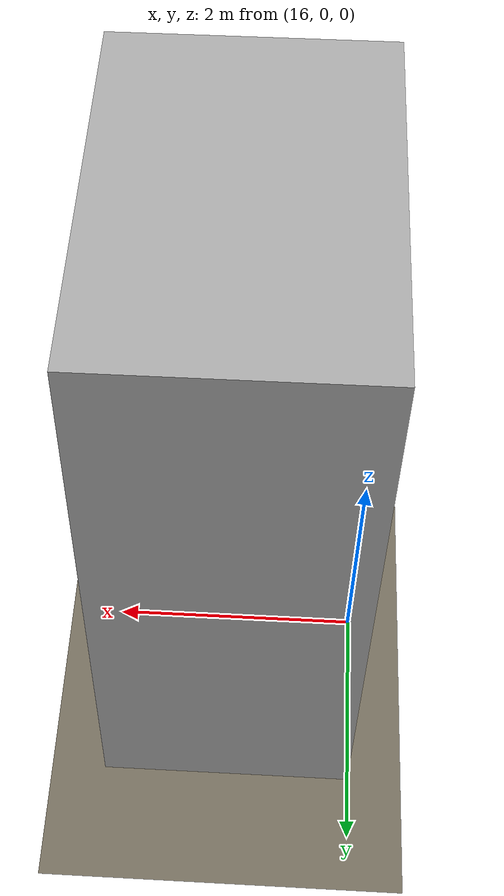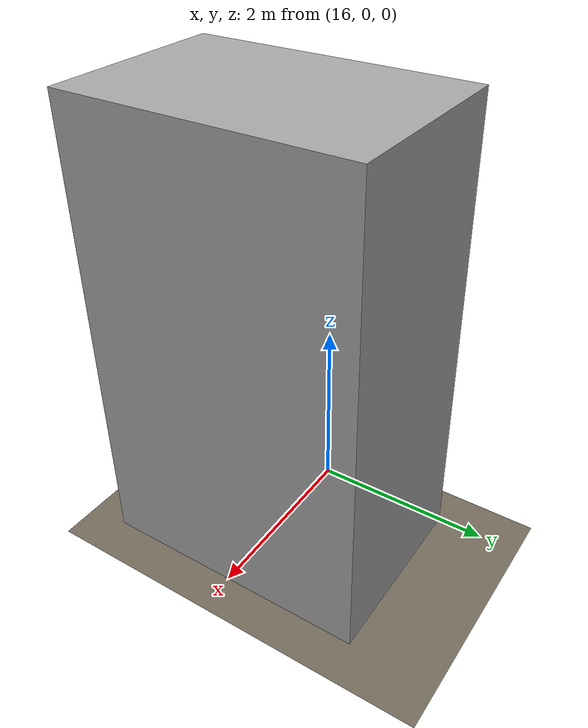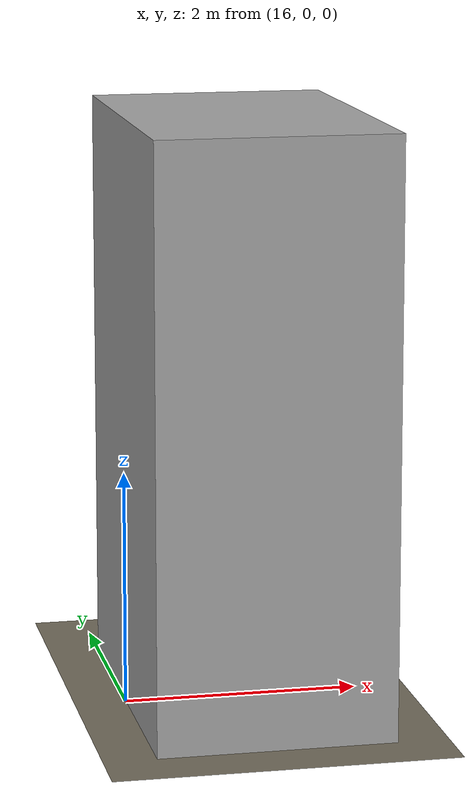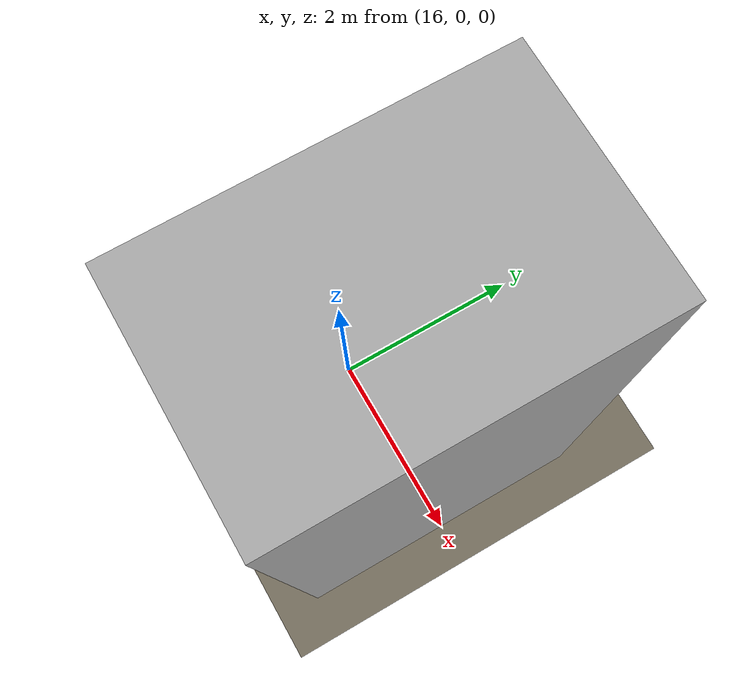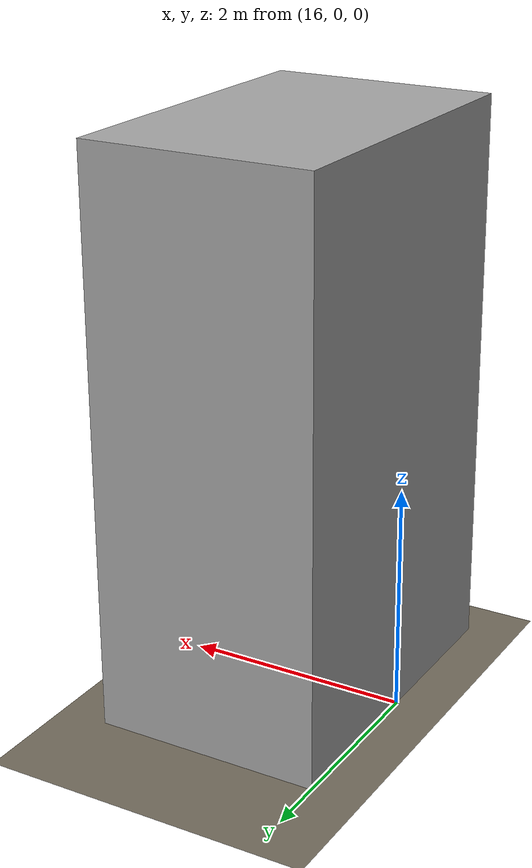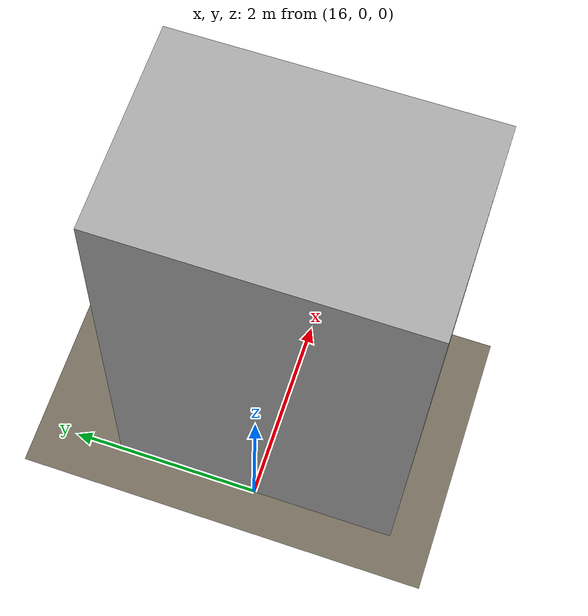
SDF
<?xml version='1.0' encoding='utf-8'?>
<sdf version="1.9">
  <world name="env_zones">
    <physics name="1ms" type="ignore">
      <max_step_size>0.001</max_step_size>
      <real_time_factor>1.0</real_time_factor>
    </physics>
    <plugin filename="gz-sim-physics-system" name="gz::sim::systems::Physics">
    </plugin>
    <plugin filename="gz-sim-sensors-system" name="gz::sim::systems::Sensors">
      <render_engine>ogre2</render_engine>
    </plugin>
    <plugin filename="gz-sim-user-commands-system" name="gz::sim::systems::UserCommands">
    </plugin>
    <plugin filename="gz-sim-scene-broadcaster-system" name="gz::sim::systems::SceneBroadcaster">
    </plugin>
    <plugin filename="gz-sim-imu-system" name="gz::sim::systems::Imu">
    </plugin>
    <plugin filename="gz-sim-navsat-system" name="gz::sim::systems::NavSat">
    </plugin>
    <scene>
      <ambient>1.0 1.0 1.0</ambient>
      <background>0.8 0.8 0.8</background>
    </scene>
    <spherical_coordinates>
      <latitude_deg>-35.363262</latitude_deg>
      <longitude_deg>149.165237</longitude_deg>
      <elevation>584</elevation>
      <heading_deg>0</heading_deg>
      <surface_model>EARTH_WGS84</surface_model>
    </spherical_coordinates>
    <light type="directional" name="sun">
      <cast_shadows>true</cast_shadows>
      <pose>0 0 10 0 0 0</pose>
      <diffuse>0.8 0.8 0.8 1</diffuse>
      <specular>0.8 0.8 0.8 1</specular>
      <attenuation>
        <range>1000</range>
        <constant>0.9</constant>
        <linear>0.01</linear>
        <quadratic>0.001</quadratic>
      </attenuation>
      <direction>-0.5 0.1 -0.9</direction>
    </light>
    <model name="ground_plane">
      <static>true</static>
      <link name="link">
        <collision name="collision">
          <geometry>
            <plane>
              <normal>0 0 1</normal>
              <size>320 80</size>
            </plane>
          </geometry>
        </collision>
        <visual name="visual">
          <geometry>
            <plane>
              <normal>0 0 1</normal>
              <size>320 80</size>
            </plane>
          </geometry>
          <material>
            <ambient>0.45 0.42 0.36 1</ambient>
            <diffuse>0.45 0.42 0.36 1</diffuse>
            <pbr>
              <metal>
                <albedo_map>model://obst_avoidance/models/textures/ground_gravel.png</albedo_map>
                <roughness>0.9</roughness>
              </metal>
            </pbr>
          </material>
        </visual>
      </link>
    </model>
    <model name="basic_box">
      <static>true</static>
      <pose>17 0 2.5 0 0 0</pose>
      <link name="body">
        <collision name="collision">
          <geometry>
            <box>
              <size>2 3 5</size>
            </box>
          </geometry>
        </collision>
        <visual name="visual">
          <geometry>
            <box>
              <size>2 3 5</size>
            </box>
          </geometry>
          <material>
            <ambient>0.65 0.65 0.65 1</ambient>
            <diffuse>0.65 0.65 0.65 1</diffuse>
          </material>
        </visual>
      </link>
    </model>
  </world>
</sdf>
